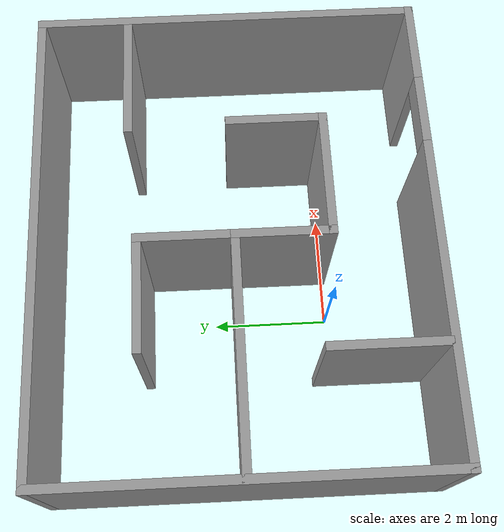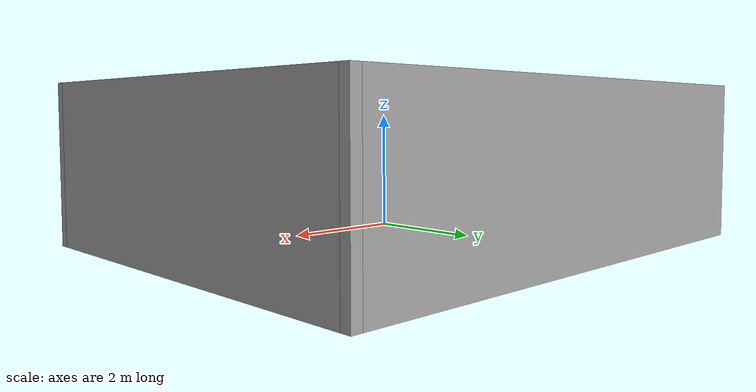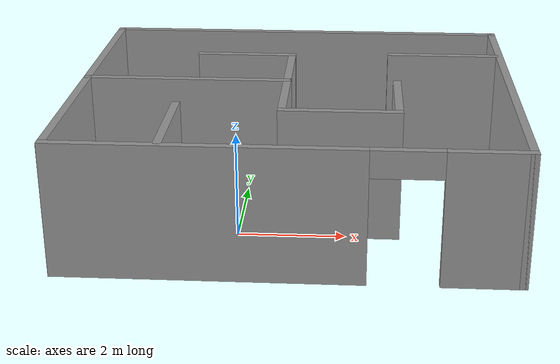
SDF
<?xml version='1.0'?>
<sdf version='1.7'>
  <model name='test_world'>
    <pose>1.00278 1.58193 0 0 -0 0</pose>
    <link name='Wall_1'>
      <collision name='Wall_1_Collision'>
        <geometry>
          <box>
            <size>6.75 0.15 2.5</size>
          </box>
        </geometry>
        <pose>0 0 1.25 0 -0 0</pose>
      </collision>
      <visual name='Wall_1_Visual'>
        <pose>0 0 1.25 0 -0 0</pose>
        <geometry>
          <box>
            <size>6.75 0.15 2.5</size>
          </box>
        </geometry>
        <material>
          <script>
            <uri>file://media/materials/scripts/gazebo.material</uri>
            <name>Gazebo/Grey</name>
          </script>
          <ambient>1 1 1 1</ambient>
        </material>
        <meta>
          <layer>0</layer>
        </meta>
      </visual>
      <pose>-4.04978 7.4e-05 0 0 -0 1.5708</pose>
    </link>
    <link name='Wall_10'>
      <collision name='Wall_10_Collision'>
        <geometry>
          <box>
            <size>1.75 0.15 2.5</size>
          </box>
        </geometry>
        <pose>0 0 1.25 0 -0 0</pose>
      </collision>
      <visual name='Wall_10_Visual'>
        <pose>0 0 1.25 0 -0 0</pose>
        <geometry>
          <box>
            <size>1.75 0.15 2.5</size>
          </box>
        </geometry>
        <material>
          <script>
            <uri>file://media/materials/scripts/gazebo.material</uri>
            <name>Gazebo/Grey</name>
          </script>
          <ambient>1 1 1 1</ambient>
        </material>
        <meta>
          <layer>0</layer>
        </meta>
      </visual>
      <pose>-0.179841 -0.767296 0 0 -0 -1.5708</pose>
    </link>
    <link name='Wall_11'>
      <collision name='Wall_11_Collision'>
        <geometry>
          <box>
            <size>2.25 0.15 2.5</size>
          </box>
        </geometry>
        <pose>0 0 1.25 0 -0 0</pose>
      </collision>
      <visual name='Wall_11_Visual'>
        <pose>0 0 1.25 0 -0 0</pose>
        <geometry>
          <box>
            <size>2.25 0.15 2.5</size>
          </box>
        </geometry>
        <material>
          <script>
            <uri>file://media/materials/scripts/gazebo.material</uri>
            <name>Gazebo/Grey</name>
          </script>
          <ambient>1 1 1 1</ambient>
        </material>
        <meta>
          <layer>0</layer>
        </meta>
      </visual>
      <pose>0.870159 -1.5673 0 0 -0 0</pose>
    </link>
    <link name='Wall_12'>
      <collision name='Wall_12_Collision'>
        <geometry>
          <box>
            <size>1.75 0.15 2.5</size>
          </box>
        </geometry>
        <pose>0 0 1.25 0 -0 0</pose>
      </collision>
      <visual name='Wall_12_Visual'>
        <pose>0 0 1.25 0 -0 0</pose>
        <geometry>
          <box>
            <size>1.75 0.15 2.5</size>
          </box>
        </geometry>
        <material>
          <script>
            <uri>file://media/materials/scripts/gazebo.material</uri>
            <name>Gazebo/Grey</name>
          </script>
          <ambient>1 1 1 1</ambient>
        </material>
        <meta>
          <layer>0</layer>
        </meta>
      </visual>
      <pose>1.92016 -0.767296 0 0 -0 1.5708</pose>
    </link>
    <link name='Wall_14'>
      <collision name='Wall_14_Collision'>
        <geometry>
          <box>
            <size>2 0.15 2.5</size>
          </box>
        </geometry>
        <pose>0 0 1.25 0 -0 0</pose>
      </collision>
      <visual name='Wall_14_Visual'>
        <pose>0 0 1.25 0 -0 0</pose>
        <geometry>
          <box>
            <size>2 0.15 2.5</size>
          </box>
        </geometry>
        <material>
          <script>
            <uri>file://media/materials/scripts/gazebo.material</uri>
            <name>Gazebo/Grey</name>
          </script>
          <ambient>1 1 1 1</ambient>
        </material>
        <meta>
          <layer>0</layer>
        </meta>
      </visual>
      <pose>-2.12084 -2.2738 0 0 -0 1.5708</pose>
    </link>
    <link name='Wall_16'>
      <collision name='Wall_16_Collision'>
        <geometry>
          <box>
            <size>2.25 0.15 2.5</size>
          </box>
        </geometry>
        <pose>0 0 1.25 0 -0 0</pose>
      </collision>
      <visual name='Wall_16_Visual'>
        <pose>0 0 1.25 0 -0 0</pose>
        <geometry>
          <box>
            <size>2.25 0.15 2.5</size>
          </box>
        </geometry>
        <material>
          <script>
            <uri>file://media/materials/scripts/gazebo.material</uri>
            <name>Gazebo/Grey</name>
          </script>
          <ambient>1 1 1 1</ambient>
        </material>
        <meta>
          <layer>0</layer>
        </meta>
      </visual>
      <pose>2.90116 1.7692 0 0 -0 3.14159</pose>
    </link>
    <link name='Wall_18'>
      <collision name='Wall_18_Collision'>
        <geometry>
          <box>
            <size>2 0.15 2.5</size>
          </box>
        </geometry>
        <pose>0 0 1.25 0 -0 0</pose>
      </collision>
      <visual name='Wall_18_Visual'>
        <pose>0 0 1.25 0 -0 0</pose>
        <geometry>
          <box>
            <size>2 0.15 2.5</size>
          </box>
        </geometry>
        <material>
          <script>
            <uri>file://media/materials/scripts/gazebo.material</uri>
            <name>Gazebo/Grey</name>
          </script>
          <ambient>1 1 1 1</ambient>
        </material>
        <meta>
          <layer>0</layer>
        </meta>
      </visual>
      <pose>-1.10484 1.6327 0 0 -0 3.14159</pose>
    </link>
    <link name='Wall_3'>
      <pose>-0 -3.3 0 0 -0 -1.8e-05</pose>
      <visual name='Wall_3_Visual_0'>
        <pose>-1.37094 0 1.25 0 -0 0</pose>
        <geometry>
          <box>
            <size>5.50812 0.15 2.5</size>
          </box>
        </geometry>
        <material>
          <script>
            <uri>file://media/materials/scripts/gazebo.material</uri>
            <name>Gazebo/Grey</name>
          </script>
          <ambient>1 1 1 1</ambient>
        </material>
        <meta>
          <layer>0</layer>
        </meta>
      </visual>
      <collision name='Wall_3_Collision_0'>
        <geometry>
          <box>
            <size>5.50812 0.15 2.5</size>
          </box>
        </geometry>
        <pose>-1.37094 0 1.25 0 -0 0</pose>
      </collision>
      <visual name='Wall_3_Visual_1'>
        <pose>3.37896 0 1.25 0 -0 0</pose>
        <geometry>
          <box>
            <size>1.49208 0.15 2.5</size>
          </box>
        </geometry>
        <material>
          <script>
            <uri>file://media/materials/scripts/gazebo.material</uri>
            <name>Gazebo/Grey</name>
          </script>
          <ambient>1 1 1 1</ambient>
        </material>
        <meta>
          <layer>0</layer>
        </meta>
      </visual>
      <collision name='Wall_3_Collision_1'>
        <geometry>
          <box>
            <size>1.49208 0.15 2.5</size>
          </box>
        </geometry>
        <pose>3.37896 0 1.25 0 -0 0</pose>
      </collision>
      <visual name='Wall_3_Visual_2'>
        <pose>2.00802 0 2.25 0 -0 0</pose>
        <geometry>
          <box>
            <size>1.2498 0.15 0.5</size>
          </box>
        </geometry>
        <material>
          <script>
            <uri>file://media/materials/scripts/gazebo.material</uri>
            <name>Gazebo/Grey</name>
          </script>
          <ambient>1 1 1 1</ambient>
        </material>
        <meta>
          <layer>0</layer>
        </meta>
      </visual>
      <collision name='Wall_3_Collision_2'>
        <geometry>
          <box>
            <size>1.2498 0.15 0.5</size>
          </box>
        </geometry>
        <pose>2.00802 0 2.25 0 -0 0</pose>
      </collision>
    </link>
    <link name='Wall_4'>
      <collision name='Wall_4_Collision'>
        <geometry>
          <box>
            <size>6.75 0.15 2.5</size>
          </box>
        </geometry>
        <pose>0 0 1.25 0 -0 0</pose>
      </collision>
      <visual name='Wall_4_Visual'>
        <pose>0 0 1.25 0 -0 0</pose>
        <geometry>
          <box>
            <size>6.75 0.15 2.5</size>
          </box>
        </geometry>
        <material>
          <script>
            <uri>file://media/materials/scripts/gazebo.material</uri>
            <name>Gazebo/Grey</name>
          </script>
          <ambient>1 1 1 1</ambient>
        </material>
        <meta>
          <layer>0</layer>
        </meta>
      </visual>
      <pose>4.04978 -7.4e-05 0 0 -0 1.5708</pose>
    </link>
    <link name='Wall_5'>
      <collision name='Wall_5_Collision'>
        <geometry>
          <box>
            <size>8.25 0.15 2.5</size>
          </box>
        </geometry>
        <pose>0 0 1.25 0 -0 0</pose>
      </collision>
      <visual name='Wall_5_Visual'>
        <pose>0 0 1.25 0 -0 0</pose>
        <geometry>
          <box>
            <size>8.25 0.15 2.5</size>
          </box>
        </geometry>
        <material>
          <script>
            <uri>file://media/materials/scripts/gazebo.material</uri>
            <name>Gazebo/Grey</name>
          </script>
          <ambient>1 1 1 1</ambient>
        </material>
        <meta>
          <layer>0</layer>
        </meta>
      </visual>
      <pose>-0 3.3 0 0 -0 3.14157</pose>
    </link>
    <link name='Wall_7'>
      <collision name='Wall_7_Collision'>
        <geometry>
          <box>
            <size>4 0.15 2.5</size>
          </box>
        </geometry>
        <pose>0 0 1.25 0 -0 0</pose>
      </collision>
      <visual name='Wall_7_Visual'>
        <pose>0 0 1.25 0 -0 0</pose>
        <geometry>
          <box>
            <size>4 0.15 2.5</size>
          </box>
        </geometry>
        <material>
          <script>
            <uri>file://media/materials/scripts/gazebo.material</uri>
            <name>Gazebo/Grey</name>
          </script>
          <ambient>1 1 1 1</ambient>
        </material>
        <meta>
          <layer>0</layer>
        </meta>
      </visual>
      <pose>-2.10484 0.032704 0 0 -0 0</pose>
    </link>
    <link name='Wall_8'>
      <collision name='Wall_8_Collision'>
        <geometry>
          <box>
            <size>1.75 0.15 2.5</size>
          </box>
        </geometry>
        <pose>0 0 1.25 0 -0 0</pose>
      </collision>
      <visual name='Wall_8_Visual'>
        <pose>0 0 1.25 0 -0 0</pose>
        <geometry>
          <box>
            <size>1.75 0.15 2.5</size>
          </box>
        </geometry>
        <material>
          <script>
            <uri>file://media/materials/scripts/gazebo.material</uri>
            <name>Gazebo/Grey</name>
          </script>
          <ambient>1 1 1 1</ambient>
        </material>
        <meta>
          <layer>0</layer>
        </meta>
      </visual>
      <pose>-0.179841 0.832704 0 0 -0 1.5708</pose>
    </link>
    <static>1</static>
  </model>
</sdf>
